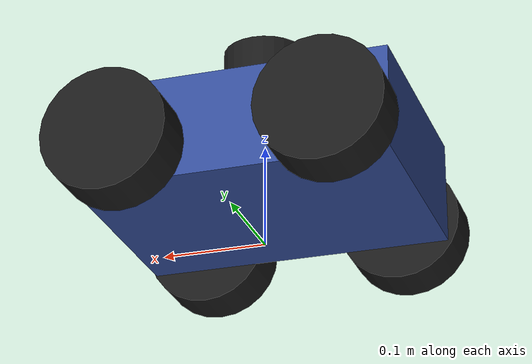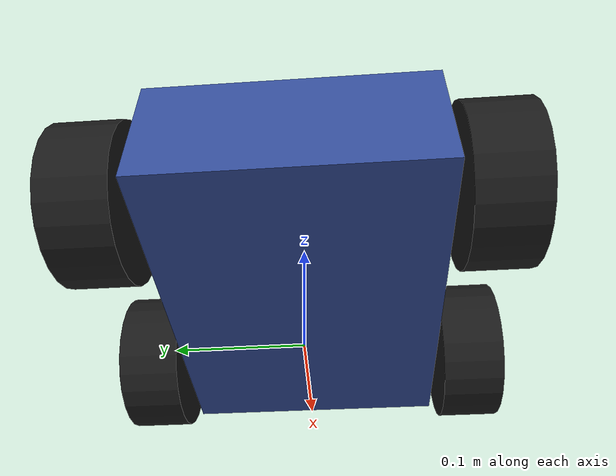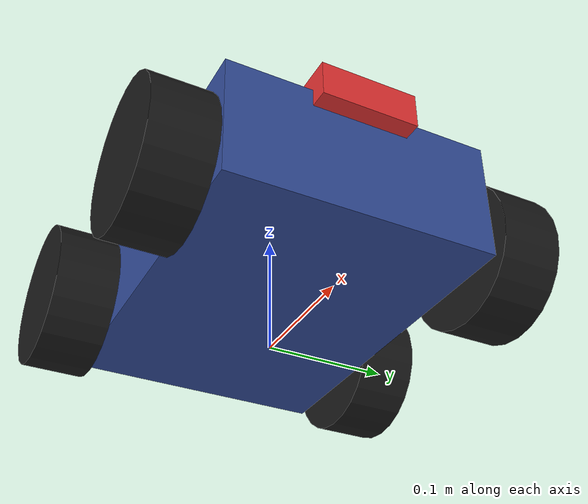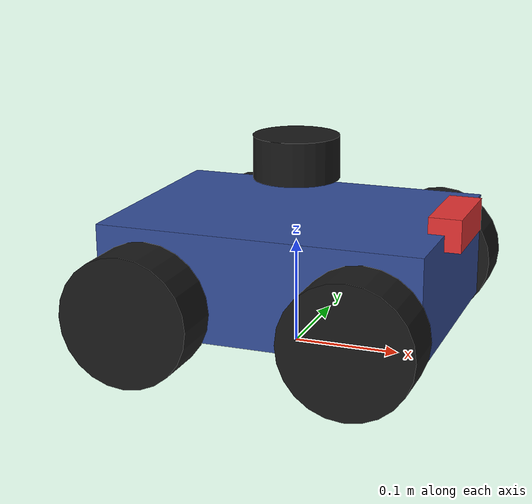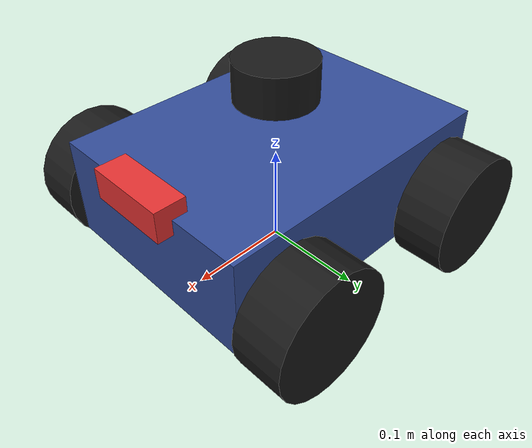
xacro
<?xml version="1.0"?>
<robot name="rover" xmlns:xacro="http://www.ros.org/wiki/xacro">

  <xacro:property name="base_len"   value="0.30"/>
  <xacro:property name="base_wid"   value="0.22"/>
  <xacro:property name="base_hgt"   value="0.10"/>
  <xacro:property name="base_mass"  value="6.0"/>

  <xacro:property name="wheel_rad"  value="0.06"/>
  <xacro:property name="wheel_wid"  value="0.05"/>
  <xacro:property name="wheel_mass" value="0.5"/>

  <xacro:property name="wheel_xoff" value="0.10"/>
  <xacro:property name="wheel_yoff" value="0.14"/>
  <xacro:property name="wheel_zoff" value="0.02"/>

  <xacro:macro name="box_inertia" params="m x y z">
    <inertial>
      <mass value="${m}"/>
      <inertia ixx="${m*(y*y+z*z)/12.0}" ixy="0" ixz="0"
               iyy="${m*(x*x+z*z)/12.0}" iyz="0"
               izz="${m*(x*x+y*y)/12.0}"/>
    </inertial>
  </xacro:macro>

  <xacro:macro name="cyl_inertia" params="m r l">
    <inertial>
      <mass value="${m}"/>
      <inertia ixx="${m*(3*r*r+l*l)/12.0}" ixy="0" ixz="0"
               iyy="${m*(3*r*r+l*l)/12.0}" iyz="0"
               izz="${m*r*r/2.0}"/>
    </inertial>
  </xacro:macro>

  <link name="base_footprint"/>

  <joint name="base_joint" type="fixed">
    <parent link="base_footprint"/>
    <child link="base_link"/>
    <origin xyz="0 0 ${wheel_rad + wheel_zoff}" rpy="0 0 0"/>
  </joint>

  <link name="base_link">
    <visual>
      <geometry><box size="${base_len} ${base_wid} ${base_hgt}"/></geometry>
      <material name="body"><color rgba="0.2 0.3 0.6 1.0"/></material>
    </visual>
    <collision>
      <geometry><box size="${base_len} ${base_wid} ${base_hgt}"/></geometry>
    </collision>
    <xacro:box_inertia m="${base_mass}" x="${base_len}" y="${base_wid}" z="${base_hgt}"/>
  </link>

  <xacro:macro name="wheel" params="name x y">
    <link name="${name}_link">
      <visual>
        <origin xyz="0 0 0" rpy="1.5708 0 0"/>
        <geometry><cylinder radius="${wheel_rad}" length="${wheel_wid}"/></geometry>
        <material name="wheel_mat"><color rgba="0.1 0.1 0.1 1.0"/></material>
      </visual>
      <collision>
        <origin xyz="0 0 0" rpy="1.5708 0 0"/>
        <geometry><cylinder radius="${wheel_rad}" length="${wheel_wid}"/></geometry>
      </collision>
      <xacro:cyl_inertia m="${wheel_mass}" r="${wheel_rad}" l="${wheel_wid}"/>
    </link>
    <joint name="${name}_joint" type="continuous">
      <parent link="base_link"/>
      <child link="${name}_link"/>
      <origin xyz="${x} ${y} ${-wheel_zoff}" rpy="0 0 0"/>
      <axis xyz="0 1 0"/>
    </joint>
    <gazebo reference="${name}_link">
      <mu1>1.0</mu1>
      <mu2>1.0</mu2>
      <kp>500000.0</kp>
      <kd>10.0</kd>
      <material>Gazebo/Black</material>
    </gazebo>
  </xacro:macro>

  <xacro:wheel name="front_left"  x="${wheel_xoff}"  y="${wheel_yoff}"/>
  <xacro:wheel name="front_right" x="${wheel_xoff}"  y="${-wheel_yoff}"/>
  <xacro:wheel name="rear_left"   x="${-wheel_xoff}" y="${wheel_yoff}"/>
  <xacro:wheel name="rear_right"  x="${-wheel_xoff}" y="${-wheel_yoff}"/>

  <gazebo reference="base_link"><material>Gazebo/Blue</material></gazebo>

  <!-- LIDAR -->
  <link name="lidar_link">
    <visual>
      <geometry><cylinder radius="0.04" length="0.04"/></geometry>
      <material name="lidar_mat"><color rgba="0.1 0.1 0.1 1.0"/></material>
    </visual>
    <collision><geometry><cylinder radius="0.04" length="0.04"/></geometry></collision>
    <xacro:cyl_inertia m="0.1" r="0.04" l="0.04"/>
  </link>
  <joint name="lidar_joint" type="fixed">
    <parent link="base_link"/>
    <child link="lidar_link"/>
    <origin xyz="0.0 0 ${base_hgt/2 + 0.05}" rpy="0 0 0"/>
  </joint>
  <gazebo reference="lidar_link">
    <material>Gazebo/Black</material>
    <sensor name="lidar" type="ray">
      <pose>0 0 0 0 0 0</pose>
      <visualize>false</visualize>
      <update_rate>10</update_rate>
      <ray>
        <scan>
          <horizontal>
            <samples>360</samples>
            <resolution>1</resolution>
            <min_angle>-3.14159</min_angle>
            <max_angle>3.14159</max_angle>
          </horizontal>
        </scan>
        <range><min>0.12</min><max>8.0</max><resolution>0.01</resolution></range>
        <noise><type>gaussian</type><mean>0.0</mean><stddev>0.01</stddev></noise>
      </ray>
      <plugin name="lidar_plugin" filename="libgazebo_ros_ray_sensor.so">
        <ros><remapping>~/out:=scan</remapping></ros>
        <output_type>sensor_msgs/LaserScan</output_type>
        <frame_name>lidar_link</frame_name>
      </plugin>
    </sensor>
  </gazebo>

  <!-- RGB CAMERA (640x480 for ORB-SLAM) -->
  <link name="camera_link">
    <visual>
      <geometry><box size="0.03 0.08 0.03"/></geometry>
      <material name="cam_mat"><color rgba="0.9 0.2 0.2 1.0"/></material>
    </visual>
    <collision><geometry><box size="0.03 0.08 0.03"/></geometry></collision>
    <xacro:box_inertia m="0.05" x="0.03" y="0.08" z="0.03"/>
  </link>
  <joint name="camera_joint" type="fixed">
    <parent link="base_link"/>
    <child link="camera_link"/>
    <origin xyz="${base_len/2} 0 ${base_hgt/2}" rpy="0 0 0"/>
  </joint>
  <link name="camera_optical_link"/>
  <joint name="camera_optical_joint" type="fixed">
    <parent link="camera_link"/>
    <child link="camera_optical_link"/>
    <origin xyz="0 0 0" rpy="-1.5708 0 -1.5708"/>
  </joint>
  <gazebo reference="camera_link">
    <material>Gazebo/Red</material>
    <sensor name="rgb_camera" type="camera">
      <pose>0 0 0 0 0 0</pose>
      <update_rate>15</update_rate>
      <visualize>false</visualize>
      <camera name="rover_cam">
        <horizontal_fov>1.3962</horizontal_fov>
        <image><width>640</width><height>480</height><format>R8G8B8</format></image>
        <clip><near>0.05</near><far>20.0</far></clip>
      </camera>
      <plugin name="camera_plugin" filename="libgazebo_ros_camera.so">
        <ros></ros>
        <camera_name>camera</camera_name>
        <frame_name>camera_optical_link</frame_name>
      </plugin>
    </sensor>
  </gazebo>

  <!-- SKID-STEER DRIVE: cmd_vel in, odom + odom-to-base_footprint TF out -->
  <gazebo>
    <plugin name="skid_steer_drive" filename="libgazebo_ros_diff_drive.so">
      <ros>
        <remapping>cmd_vel:=cmd_vel</remapping>
        <remapping>odom:=odom</remapping>
      </ros>

      <num_wheel_pairs>2</num_wheel_pairs>

      <left_joint>front_left_joint</left_joint>
      <right_joint>front_right_joint</right_joint>
      <left_joint>rear_left_joint</left_joint>
      <right_joint>rear_right_joint</right_joint>

      <wheel_separation>${2*wheel_yoff}</wheel_separation>
      <wheel_separation>${2*wheel_yoff}</wheel_separation>
      <wheel_diameter>${2*wheel_rad}</wheel_diameter>
      <wheel_diameter>${2*wheel_rad}</wheel_diameter>

      <max_wheel_torque>50.0</max_wheel_torque>
      <max_wheel_acceleration>10.0</max_wheel_acceleration>

      <publish_odom>true</publish_odom>
      <publish_odom_tf>true</publish_odom_tf>
      <publish_wheel_tf>true</publish_wheel_tf>

      <odometry_frame>odom</odometry_frame>
      <robot_base_frame>base_footprint</robot_base_frame>

      <update_rate>50</update_rate>
    </plugin>
  </gazebo>

</robot>
